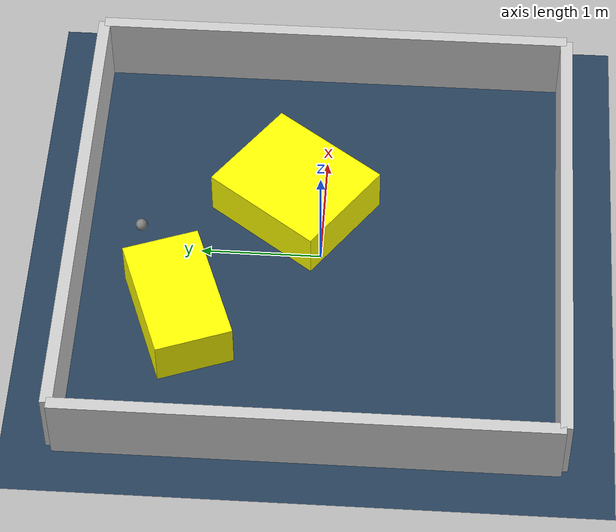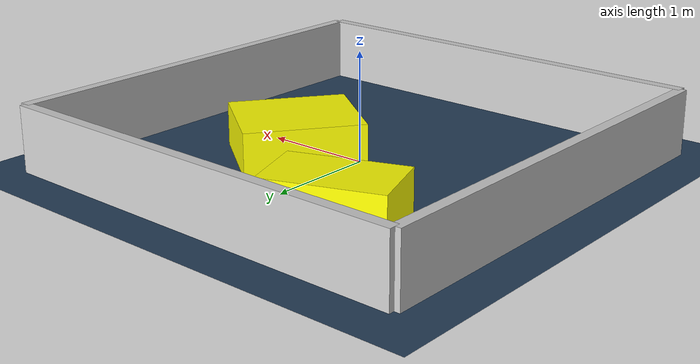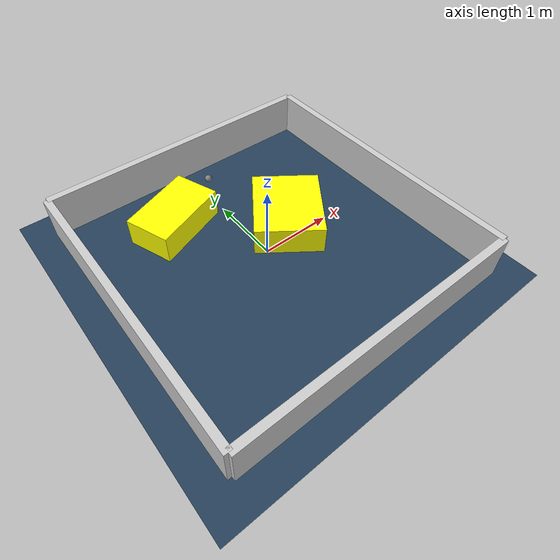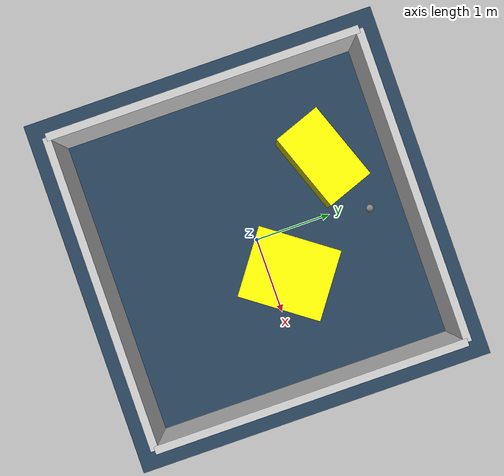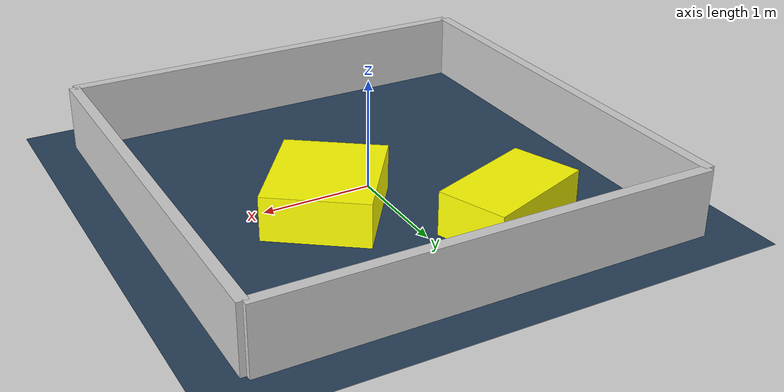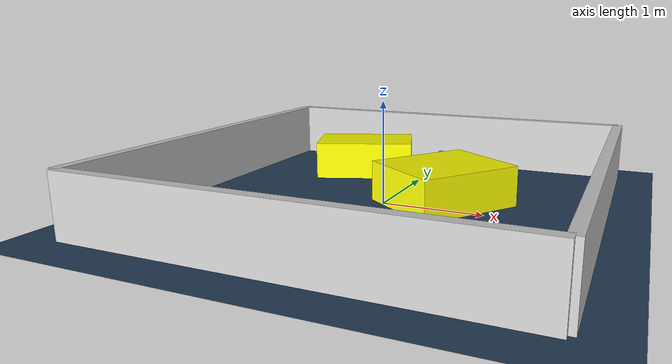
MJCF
<?xml version="1.0" ?>
<mujoco model="generated_environment">
  <option timestep="0.01" integrator="RK4" cone="elliptic"/>
  <default>
    <geom density="1"/>
  </default>
  <asset>
    <texture builtin="gradient" height="3072" rgb1="0.3 0.5 0.7" rgb2="0 0 0" type="skybox" width="512"/>
    <texture builtin="checker" height="300" mark="edge" markrgb="0.8 0.8 0.8" name="groundplane" rgb1="0.2 0.3 0.4" rgb2="0.1 0.2 0.3" type="2d" width="300"/>
    <material name="groundplane" reflectance="0.2" texrepeat="5 5" texture="groundplane" texuniform="true"/>
    <material name="robot" rgba="0.0 1.0 0.0 1"/>
  </asset>
  <worldbody>
    <light dir="0 0 -1" directional="true" pos="0 0 1.5"/>
    <geom condim="4" friction="1.0 0.005 0.001" material="groundplane" name="floor" size="0 0 0.05" type="plane"/>
    <body name="walls">
      <geom name="wall_1" condim="4" pos="-2.0 0.0 0.3" rgba="0.800000011920929 0.800000011920929 0.800000011920929 1.0" size="0.05 2.0 0.3" type="box"/>
      <geom name="wall_2" condim="4" pos="2.0 0.0 0.3" rgba="0.800000011920929 0.800000011920929 0.800000011920929 1.0" size="0.05 2.0 0.3" type="box"/>
      <geom name="wall_3" condim="4" pos="0.0 -2.0 0.3" rgba="0.800000011920929 0.800000011920929 0.800000011920929 1.0" size="2.0 0.05 0.3" type="box"/>
      <geom name="wall_4" condim="4" pos="0.0 2.0 0.3" rgba="0.800000011920929 0.800000011920929 0.800000011920929 1.0" size="2.0 0.05 0.3" type="box"/>
    </body>
    <body name="robot">
      <joint name="joint_x" type="slide" pos="0 0 0" axis="1 0 0"/>
      <joint name="joint_y" type="slide" pos="0 0 0" axis="0 1 0"/>
      <geom name="robot" type="sphere" pos="0.09344970988862822 1.4991071297535763 0.2" size="0.05" mass="5." friction="1.0 0.005 0.0001" condim="4"/>
      <site name="sensor_ball"/>
    </body>
    <body name="obstacle_1_movable">
      <geom name="obstacle_1_movable" condim="4" pos="0.5308174397614882 0.2432516483867384 0.2" euler="0 0 324.0996716987648" friction="1.0 0.005 0.001" rgba="1 1 0 1" size="0.45939322920421977 0.5372442472374497 0.2" type="box" mass="0.1"/>
      <joint type="free"/>
    </body>
    <body name="obstacle_2_movable">
      <geom name="obstacle_2_movable" condim="4" pos="-0.7076576957455974 1.122064374041646 0.2" euler="0 0 20.289722438342213" friction="1.0 0.005 0.001" rgba="1 1 0 1" size="0.5321846193959712 0.31885713598891885 0.2" type="box" mass="0.1"/>
      <joint type="free"/>
    </body>
  </worldbody>
  <actuator>
    <motor name="actuator_x" joint="joint_x" gear="1" ctrlrange="-1 1"/>
    <motor name="actuator_y" joint="joint_y" gear="1" ctrlrange="-1 1"/>
  </actuator>
</mujoco>
